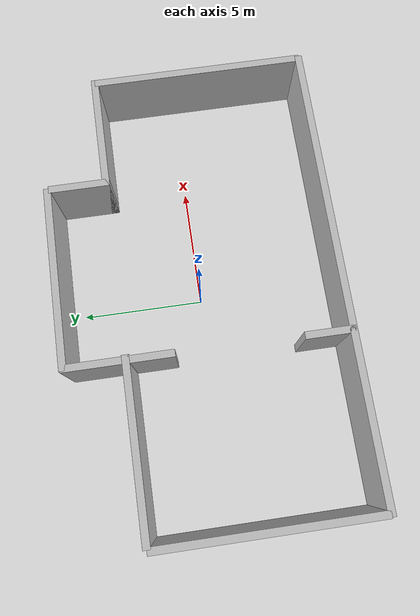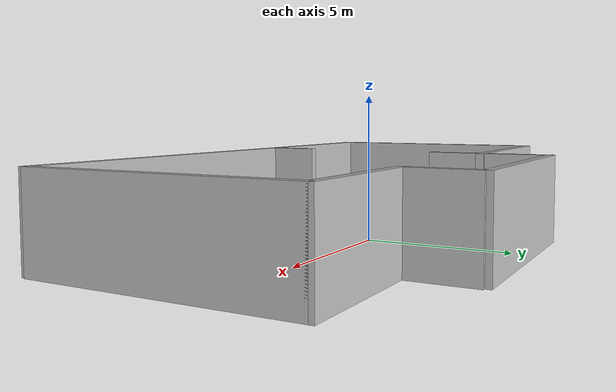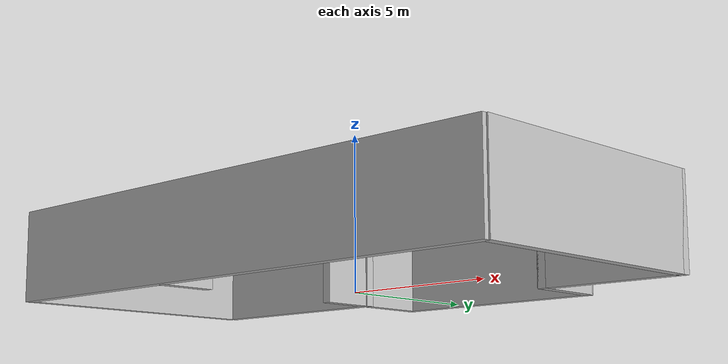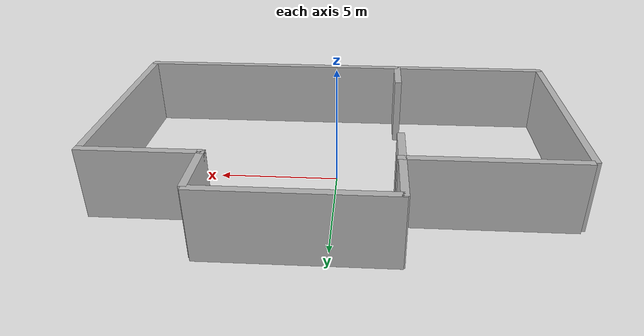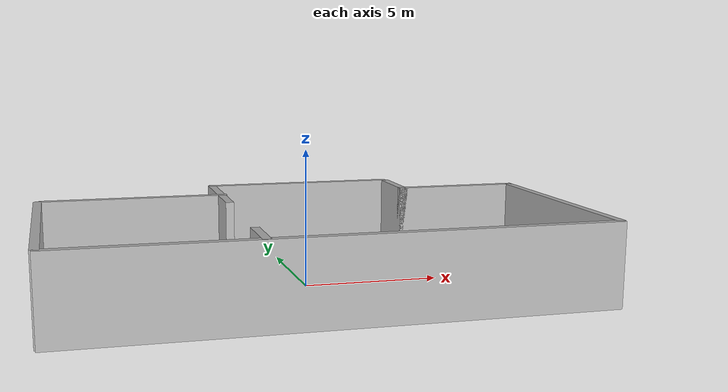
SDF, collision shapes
<?xml version="1.0" ?>
<sdf version="1.6">
  <model name="aws_robomaker_residential_HouseWallB_01">
    <link name="link">
      <inertial>
        <mass>1</mass>
      </inertial>
      <collision name="collision">
        <pose>0.0 -5.6 1.5 0 0 0 </pose>
        <geometry>
          <box>
            <size>19.0 0.3 3.0</size>
          </box>
        </geometry>
      </collision>
      <collision name="collision2">
        <pose>1.1 5.6 1.5 0 0 0 </pose>
        <geometry>
          <box>
            <size>7.5 0.3 3.0</size>
          </box>
        </geometry>
      </collision>
      <collision name="collision5">
        <pose>7.1 3.2 1.5 0 0 0 </pose>
        <geometry>
          <box>
            <size>4.9 0.3 3.0</size>
          </box>
        </geometry>
      </collision>
      <collision name="collision6">
        <pose>-5.85 3.2 1.5 0 0 0 </pose>
        <geometry>
          <box>
            <size>7.0 0.3 3.0</size>
          </box>
        </geometry>
      </collision>
      <collision name="collision3">
        <pose>9.4 -1.2 1.5 0 0 0 </pose>
        <geometry>
          <box>
            <size>0.3 8.8 3.0</size>
          </box>
        </geometry>
      </collision>
      <collision name="collision4">
        <pose>-9.4 -1.2 1.5 0 0 0 </pose>
        <geometry>
          <box>
            <size>0.3 8.8 3.0</size>
          </box>
        </geometry>
      </collision>
      <collision name="collision7">
        <pose>-2.6 -4.7 1.5 0 0 0 </pose>
        <geometry>
          <box>
            <size>0.3 2.0 3.0</size>
          </box>
        </geometry>
      </collision>
      <collision name="collision8">
        <pose>-2.55 3.5 1.5 0 0 0 </pose>
        <geometry>
          <box>
            <size>0.3 4.4 3.0</size>
          </box>
        </geometry>
      </collision>
      <collision name="collision9">
        <pose>4.8 4.3 1.5 0 0 0 </pose>
        <geometry>
          <box>
            <size>0.3 2.5 3.0</size>
          </box>
        </geometry>
      </collision>
      <visual name="visual">
	    <geometry>
          <mesh>
            <uri>model://aws_robomaker_residential_HouseWallB_01/meshes/aws_HouseWallB_01_visual.DAE</uri>
          </mesh>
        </geometry>
      <meta> <layer> 2 </layer></meta>
</visual>
    </link>
<static>1</static>
  </model>
</sdf>
